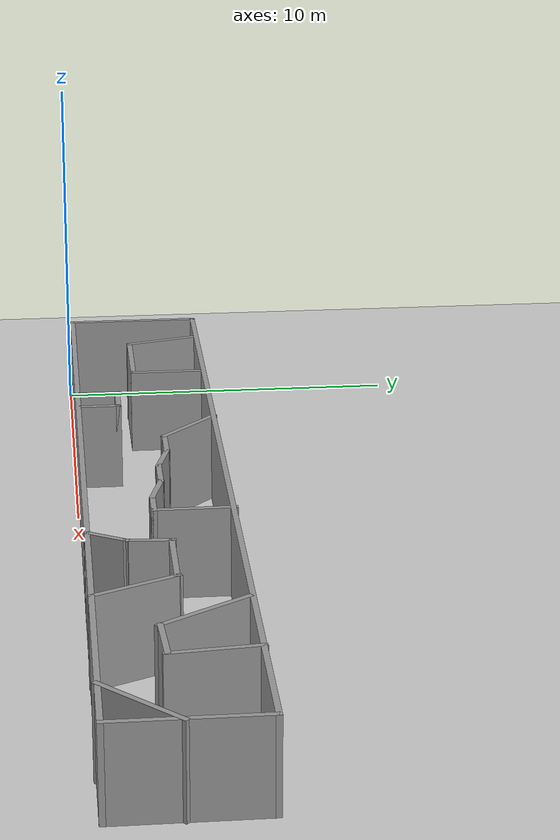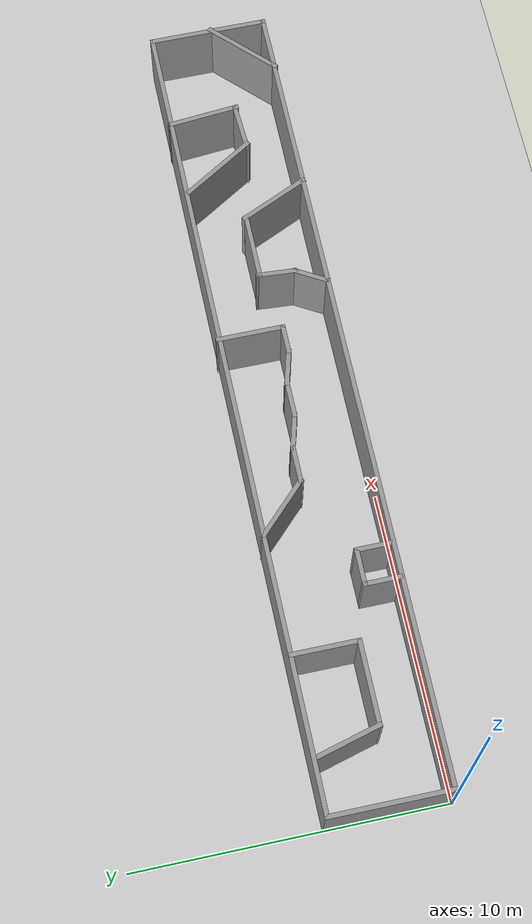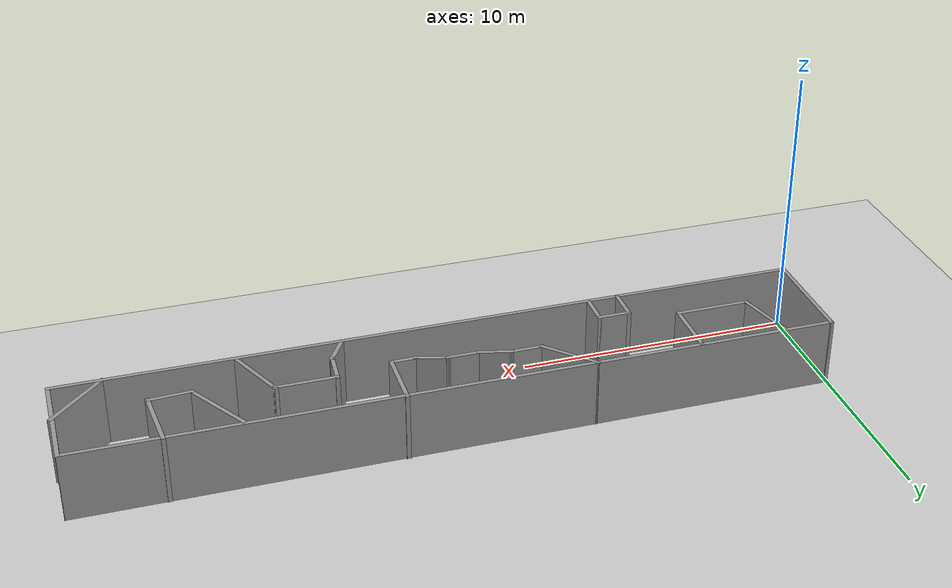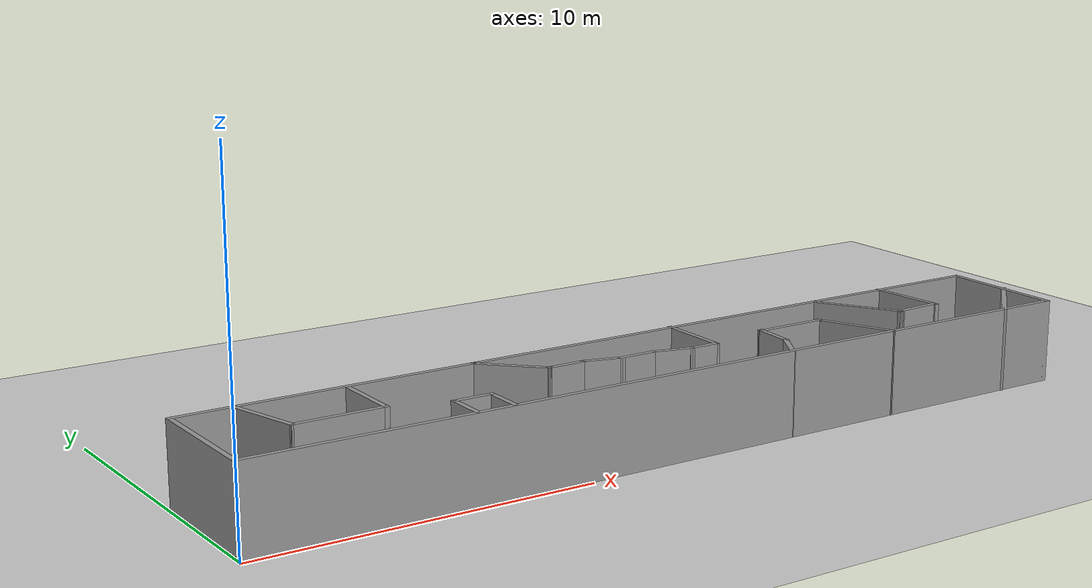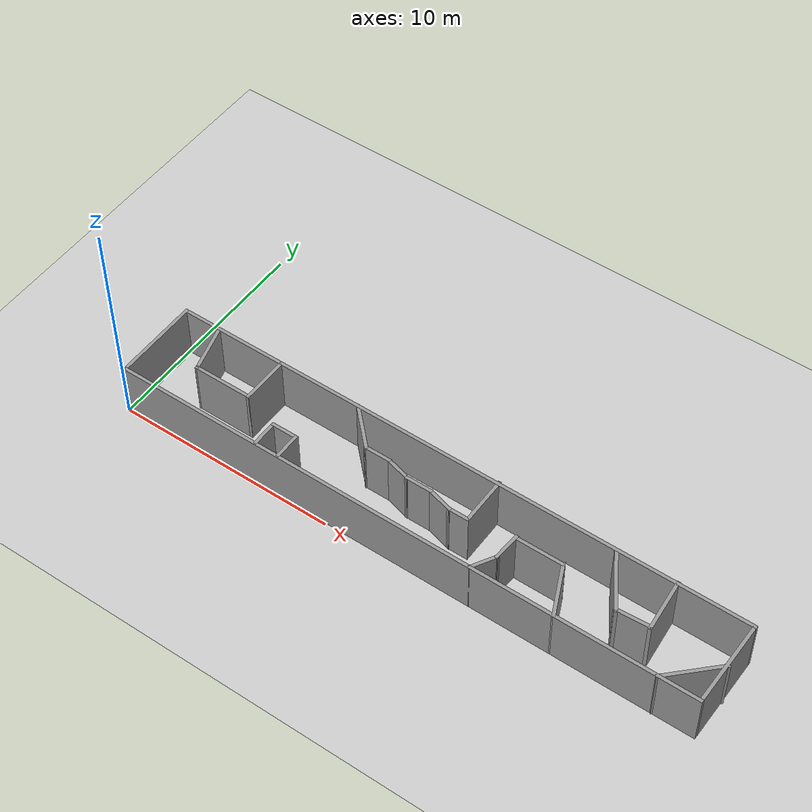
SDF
<sdf version="1.6">
 <world name="default">
  <light name="sun" type="directional">
   <pose>0 0 10 0 -0 0</pose>
   <diffuse>0.8 0.8 0.8 1</diffuse>
   <specular>0.2 0.2 0.2 1</specular>
   <attenuation>
    <range>1000</range>
    <constant>0.9</constant>
    <linear>0.01</linear>
    <quadratic>0.001</quadratic>
   </attenuation>
   <direction>-0.5 0.1 -0.9</direction>
  </light>
  <model name="ground_plane">
   <static>1</static>
   <link name="link">
    <collision name="collision">
     <geometry><plane><normal>0 0 1</normal><size>100 100</size></plane></geometry>
     <surface>
      <contact><collide_bitmask>65535</collide_bitmask></contact>
      <friction><ode><mu>100</mu><mu2>50</mu2></ode></friction>
     </surface>
    </collision>
    <visual name="visual">
     <cast_shadows>0</cast_shadows>
     <geometry><plane><normal>0 0 1</normal><size>100 100</size></plane></geometry>
     <material>
      <script><uri>file://media/materials/scripts/gazebo.material</uri><name>Gazebo/Grey</name></script>
     </material>
    </visual>
   </link>
  </model>
  <gravity>0 0 -9.8</gravity>
  <magnetic_field>6e-06 2.3e-05 -4.2e-05</magnetic_field>
  <atmosphere type="adiabatic"/>
  <physics name="default_physics" default="0" type="ode">
   <max_step_size>0.001</max_step_size>
   <real_time_factor>1</real_time_factor>
   <real_time_update_rate>1000</real_time_update_rate>
  </physics>
  <scene><ambient>0.4 0.4 0.4 1</ambient><background>0.7 0.7 0.7 1</background><shadows>1</shadows></scene>
  <spherical_coordinates>
   <surface_model>EARTH_WGS84</surface_model>
   <latitude_deg>0</latitude_deg>
   <longitude_deg>0</longitude_deg>
   <elevation>0</elevation>
   <heading_deg>0</heading_deg>
  </spherical_coordinates>
  <model name="Test2">
   <pose>13.3782 2.03003 0 0 -0 0</pose>
   <link name="Wall_0">
    <collision name="Wall_0_Collision">
     <geometry><box><size>26.75 0.15 2.5</size></box></geometry>
     <pose>0 0 1.25 0 -0 0</pose>
    </collision>
    <visual name="Wall_0_Visual">
     <pose>0 0 1.25 0 -0 0</pose>
     <geometry><box><size>26.75 0.15 2.5</size></box></geometry>
     <material>
      <script><uri>file://media/materials/scripts/gazebo.material</uri><name>Gazebo/Grey</name></script>
      <ambient>1 1 1 1</ambient>
     </material>
     <meta><layer>0</layer></meta>
    </visual>
    <pose>-0.037871 -1.90532 0 0 -0 0</pose>
   </link>
   <link name="Wall_10">
    <collision name="Wall_10_Collision">
     <geometry><box><size>2.25 0.15 2.5</size></box></geometry>
     <pose>0 0 1.25 0 -0 0</pose>
    </collision>
    <visual name="Wall_10_Visual">
     <pose>0 0 1.25 0 -0 0</pose>
     <geometry><box><size>2.25 0.15 2.5</size></box></geometry>
     <material>
      <script><uri>file://media/materials/scripts/gazebo.material</uri><name>Gazebo/Grey</name></script>
      <ambient>1 1 1 1</ambient>
     </material>
     <meta><layer>0</layer></meta>
    </visual>
    <pose>-8.44766 0.854981 0 0 -0 1.5708</pose>
   </link>
   <link name="Wall_12">
    <collision name="Wall_12_Collision">
     <geometry><box><size>1.25 0.15 2.5</size></box></geometry>
     <pose>0 0 1.25 0 -0 0</pose>
    </collision>
    <visual name="Wall_12_Visual">
     <pose>0 0 1.25 0 -0 0</pose>
     <geometry><box><size>1.25 0.15 2.5</size></box></geometry>
     <material>
      <script><uri>file://media/materials/scripts/gazebo.material</uri><name>Gazebo/Grey</name></script>
      <ambient>1 1 1 1</ambient>
     </material>
     <meta><layer>0</layer></meta>
    </visual>
    <pose>-6.77697 -1.29803 0 0 -0 1.5708</pose>
   </link>
   <link name="Wall_13">
    <collision name="Wall_13_Collision">
     <geometry><box><size>1.25 0.15 2.5</size></box></geometry>
     <pose>0 0 1.25 0 -0 0</pose>
    </collision>
    <visual name="Wall_13_Visual">
     <pose>0 0 1.25 0 -0 0</pose>
     <geometry><box><size>1.25 0.15 2.5</size></box></geometry>
     <material>
      <script><uri>file://media/materials/scripts/gazebo.material</uri><name>Gazebo/Grey</name></script>
      <ambient>1 1 1 1</ambient>
     </material>
     <meta><layer>0</layer></meta>
    </visual>
    <pose>-6.22697 -0.748033 0 0 -0 0</pose>
   </link>
   <link name="Wall_14">
    <collision name="Wall_14_Collision">
     <geometry><box><size>1.25 0.15 2.5</size></box></geometry>
     <pose>0 0 1.25 0 -0 0</pose>
    </collision>
    <visual name="Wall_14_Visual">
     <pose>0 0 1.25 0 -0 0</pose>
     <geometry><box><size>1.25 0.15 2.5</size></box></geometry>
     <material>
      <script><uri>file://media/materials/scripts/gazebo.material</uri><name>Gazebo/Grey</name></script>
      <ambient>1 1 1 1</ambient>
     </material>
     <meta><layer>0</layer></meta>
    </visual>
    <pose>-5.67697 -1.29803 0 0 -0 -1.5708</pose>
   </link>
   <link name="Wall_16">
    <collision name="Wall_16_Collision">
     <geometry><box><size>2.25 0.15 2.5</size></box></geometry>
     <pose>0 0 1.25 0 -0 0</pose>
    </collision>
    <visual name="Wall_16_Visual">
     <pose>0 0 1.25 0 -0 0</pose>
     <geometry><box><size>2.25 0.15 2.5</size></box></geometry>
     <material>
      <script><uri>file://media/materials/scripts/gazebo.material</uri><name>Gazebo/Grey</name></script>
      <ambient>1 1 1 1</ambient>
     </material>
     <meta><layer>0</layer></meta>
    </visual>
    <pose>-3.89036 1.17187 0 0 -0 -0.785398</pose>
   </link>
   <link name="Wall_17">
    <collision name="Wall_17_Collision">
     <geometry><box><size>1.25 0.15 2.5</size></box></geometry>
     <pose>0 0 1.25 0 -0 0</pose>
    </collision>
    <visual name="Wall_17_Visual">
     <pose>0 0 1.25 0 -0 0</pose>
     <geometry><box><size>1.25 0.15 2.5</size></box></geometry>
     <material>
      <script><uri>file://media/materials/scripts/gazebo.material</uri><name>Gazebo/Grey</name></script>
      <ambient>1 1 1 1</ambient>
     </material>
     <meta><layer>0</layer></meta>
    </visual>
    <pose>-2.5979 0.429412 0 0 -0 0</pose>
   </link>
   <link name="Wall_18">
    <collision name="Wall_18_Collision">
     <geometry><box><size>1.25 0.15 2.5</size></box></geometry>
     <pose>0 0 1.25 0 -0 0</pose>
    </collision>
    <visual name="Wall_18_Visual">
     <pose>0 0 1.25 0 -0 0</pose>
     <geometry><box><size>1.25 0.15 2.5</size></box></geometry>
     <material>
      <script><uri>file://media/materials/scripts/gazebo.material</uri><name>Gazebo/Grey</name></script>
      <ambient>1 1 1 1</ambient>
     </material>
     <meta><layer>0</layer></meta>
    </visual>
    <pose>-1.51664 0.287061 0 0 -0 -0.261799</pose>
   </link>
   <link name="Wall_19">
    <collision name="Wall_19_Collision">
     <geometry><box><size>1.25 0.15 2.5</size></box></geometry>
     <pose>0 0 1.25 0 -0 0</pose>
    </collision>
    <visual name="Wall_19_Visual">
     <pose>0 0 1.25 0 -0 0</pose>
     <geometry><box><size>1.25 0.15 2.5</size></box></geometry>
     <material>
      <script><uri>file://media/materials/scripts/gazebo.material</uri><name>Gazebo/Grey</name></script>
      <ambient>1 1 1 1</ambient>
     </material>
     <meta><layer>0</layer></meta>
    </visual>
    <pose>-0.435379 0.144711 0 0 -0 0</pose>
   </link>
   <link name="Wall_2">
    <collision name="Wall_2_Collision">
     <geometry><box><size>26.75 0.15 2.5</size></box></geometry>
     <pose>0 0 1.25 0 -0 0</pose>
    </collision>
    <visual name="Wall_2_Visual">
     <pose>0 0 1.25 0 -0 0</pose>
     <geometry><box><size>26.75 0.15 2.5</size></box></geometry>
     <material>
      <script><uri>file://media/materials/scripts/gazebo.material</uri><name>Gazebo/Grey</name></script>
      <ambient>1 1 1 1</ambient>
     </material>
     <meta><layer>0</layer></meta>
    </visual>
    <pose>-0.038038 1.91434 0 0 -0 0</pose>
   </link>
   <link name="Wall_20">
    <collision name="Wall_20_Collision">
     <geometry><box><size>1.25 0.15 2.5</size></box></geometry>
     <pose>0 0 1.25 0 -0 0</pose>
    </collision>
    <visual name="Wall_20_Visual">
     <pose>0 0 1.25 0 -0 0</pose>
     <geometry><box><size>1.25 0.15 2.5</size></box></geometry>
     <material>
      <script><uri>file://media/materials/scripts/gazebo.material</uri><name>Gazebo/Grey</name></script>
      <ambient>1 1 1 1</ambient>
     </material>
     <meta><layer>0</layer></meta>
    </visual>
    <pose>0.64588 0.00236 0 0 -0 -0.261799</pose>
   </link>
   <link name="Wall_21">
    <collision name="Wall_21_Collision">
     <geometry><box><size>1 0.15 2.5</size></box></geometry>
     <pose>0 0 1.25 0 -0 0</pose>
    </collision>
    <visual name="Wall_21_Visual">
     <pose>0 0 1.25 0 -0 0</pose>
     <geometry><box><size>1 0.15 2.5</size></box></geometry>
     <material>
      <script><uri>file://media/materials/scripts/gazebo.material</uri><name>Gazebo/Grey</name></script>
      <ambient>1 1 1 1</ambient>
     </material>
     <meta><layer>0</layer></meta>
    </visual>
    <pose>1.60214 -0.13999 0 0 -0 0</pose>
   </link>
   <link name="Wall_22">
    <collision name="Wall_22_Collision">
     <geometry><box><size>2.25 0.15 2.5</size></box></geometry>
     <pose>0 0 1.25 0 -0 0</pose>
    </collision>
    <visual name="Wall_22_Visual">
     <pose>0 0 1.25 0 -0 0</pose>
     <geometry><box><size>2.25 0.15 2.5</size></box></geometry>
     <material>
      <script><uri>file://media/materials/scripts/gazebo.material</uri><name>Gazebo/Grey</name></script>
      <ambient>1 1 1 1</ambient>
     </material>
     <meta><layer>0</layer></meta>
    </visual>
    <pose>2.02714 0.91001 0 0 -0 1.5708</pose>
   </link>
   <link name="Wall_24">
    <collision name="Wall_24_Collision">
     <geometry><box><size>1.25 0.15 2.5</size></box></geometry>
     <pose>0 0 1.25 0 -0 0</pose>
    </collision>
    <visual name="Wall_24_Visual">
     <pose>0 0 1.25 0 -0 0</pose>
     <geometry><box><size>1.25 0.15 2.5</size></box></geometry>
     <material>
      <script><uri>file://media/materials/scripts/gazebo.material</uri><name>Gazebo/Grey</name></script>
      <ambient>1 1 1 1</ambient>
     </material>
     <meta><layer>0</layer></meta>
    </visual>
    <pose>3.61193 -1.41217 0 0 -0 1.0472</pose>
   </link>
   <link name="Wall_25">
    <collision name="Wall_25_Collision">
     <geometry><box><size>1.32643 0.15 2.5</size></box></geometry>
     <pose>0 0 1.25 0 -0 0</pose>
    </collision>
    <visual name="Wall_25_Visual">
     <pose>0 0 1.25 0 -0 0</pose>
     <geometry><box><size>1.32643 0.15 2.5</size></box></geometry>
     <material>
      <script><uri>file://media/materials/scripts/gazebo.material</uri><name>Gazebo/Grey</name></script>
      <ambient>1 1 1 1</ambient>
     </material>
     <meta><layer>0</layer></meta>
    </visual>
    <pose>3.92738 -0.349038 0 0 -0 1.50196</pose>
   </link>
   <link name="Wall_26">
    <collision name="Wall_26_Collision">
     <geometry><box><size>2.25 0.15 2.5</size></box></geometry>
     <pose>0 0 1.25 0 -0 0</pose>
    </collision>
    <visual name="Wall_26_Visual">
     <pose>0 0 1.25 0 -0 0</pose>
     <geometry><box><size>2.25 0.15 2.5</size></box></geometry>
     <material>
      <script><uri>file://media/materials/scripts/gazebo.material</uri><name>Gazebo/Grey</name></script>
      <ambient>1 1 1 1</ambient>
     </material>
     <meta><layer>0</layer></meta>
    </visual>
    <pose>5.01784 0.197329 0 0 -0 0</pose>
   </link>
   <link name="Wall_27">
    <collision name="Wall_27_Collision">
     <geometry><box><size>2.50129 0.15 2.5</size></box></geometry>
     <pose>0 0 1.25 0 -0 0</pose>
    </collision>
    <visual name="Wall_27_Visual">
     <pose>0 0 1.25 0 -0 0</pose>
     <geometry><box><size>2.50129 0.15 2.5</size></box></geometry>
     <material>
      <script><uri>file://media/materials/scripts/gazebo.material</uri><name>Gazebo/Grey</name></script>
      <ambient>1 1 1 1</ambient>
     </material>
     <meta><layer>0</layer></meta>
    </visual>
    <pose>6.55238 -0.833365 0 0 -0 -1.14598</pose>
   </link>
   <link name="Wall_29">
    <collision name="Wall_29_Collision">
     <geometry><box><size>2.77736 0.15 2.5</size></box></geometry>
     <pose>0 0 1.25 0 -0 0</pose>
    </collision>
    <visual name="Wall_29_Visual">
     <pose>0 0 1.25 0 -0 0</pose>
     <geometry><box><size>2.77736 0.15 2.5</size></box></geometry>
     <material>
      <script><uri>file://media/materials/scripts/gazebo.material</uri><name>Gazebo/Grey</name></script>
      <ambient>1 1 1 1</ambient>
     </material>
     <meta><layer>0</layer></meta>
    </visual>
    <pose>8.07112 0.714706 0 0 -0 -1.01901</pose>
   </link>
   <link name="Wall_30">
    <collision name="Wall_30_Collision">
     <geometry><box><size>1.5832 0.15 2.5</size></box></geometry>
     <pose>0 0 1.25 0 -0 0</pose>
    </collision>
    <visual name="Wall_30_Visual">
     <pose>0 0 1.25 0 -0 0</pose>
     <geometry><box><size>1.5832 0.15 2.5</size></box></geometry>
     <material>
      <script><uri>file://media/materials/scripts/gazebo.material</uri><name>Gazebo/Grey</name></script>
      <ambient>1 1 1 1</ambient>
     </material>
     <meta><layer>0</layer></meta>
    </visual>
    <pose>9.43476 -0.323102 0 0 -0 0.056485</pose>
   </link>
   <link name="Wall_31">
    <collision name="Wall_31_Collision">
     <geometry><box><size>2.42085 0.15 2.5</size></box></geometry>
     <pose>0 0 1.25 0 -0 0</pose>
    </collision>
    <visual name="Wall_31_Visual">
     <pose>0 0 1.25 0 -0 0</pose>
     <geometry><box><size>2.42085 0.15 2.5</size></box></geometry>
     <material>
      <script><uri>file://media/materials/scripts/gazebo.material</uri><name>Gazebo/Grey</name></script>
      <ambient>1 1 1 1</ambient>
     </material>
     <meta><layer>0</layer></meta>
    </visual>
    <pose>10.0895 0.80781 0 0 -0 1.65999</pose>
   </link>
   <link name="Wall_33">
    <collision name="Wall_33_Collision">
     <geometry><box><size>2.75 0.15 2.5</size></box></geometry>
     <pose>0 0 1.25 0 -0 0</pose>
    </collision>
    <visual name="Wall_33_Visual">
     <pose>0 0 1.25 0 -0 0</pose>
     <geometry><box><size>2.75 0.15 2.5</size></box></geometry>
     <material>
      <script><uri>file://media/materials/scripts/gazebo.material</uri><name>Gazebo/Grey</name></script>
      <ambient>1 1 1 1</ambient>
     </material>
     <meta><layer>0</layer></meta>
    </visual>
    <pose>12.3877 -1.00971 0 0 -0 0.785398</pose>
   </link>
   <link name="Wall_4">
    <collision name="Wall_4_Collision">
     <geometry><box><size>3.96965 0.15 2.5</size></box></geometry>
     <pose>0 0 1.25 0 -0 0</pose>
    </collision>
    <visual name="Wall_4_Visual">
     <pose>0 0 1.25 0 -0 0</pose>
     <geometry><box><size>3.96965 0.15 2.5</size></box></geometry>
     <material>
      <script><uri>file://media/materials/scripts/gazebo.material</uri><name>Gazebo/Grey</name></script>
      <ambient>1 1 1 1</ambient>
     </material>
     <meta><layer>0</layer></meta>
    </visual>
    <pose>-13.338 0.00451 0 0 -0 1.57084</pose>
   </link>
   <link name="Wall_6">
    <collision name="Wall_6_Collision">
     <geometry><box><size>3.96965 0.15 2.5</size></box></geometry>
     <pose>0 0 1.25 0 -0 0</pose>
    </collision>
    <visual name="Wall_6_Visual">
     <pose>0 0 1.25 0 -0 0</pose>
     <geometry><box><size>3.96965 0.15 2.5</size></box></geometry>
     <material>
      <script><uri>file://media/materials/scripts/gazebo.material</uri><name>Gazebo/Grey</name></script>
      <ambient>1 1 1 1</ambient>
     </material>
     <meta><layer>0</layer></meta>
    </visual>
    <pose>13.262 0.00451 0 0 -0 -1.57075</pose>
   </link>
   <link name="Wall_8">
    <collision name="Wall_8_Collision">
     <geometry><box><size>2.25 0.15 2.5</size></box></geometry>
     <pose>0 0 1.25 0 -0 0</pose>
    </collision>
    <visual name="Wall_8_Visual">
     <pose>0 0 1.25 0 -0 0</pose>
     <geometry><box><size>2.25 0.15 2.5</size></box></geometry>
     <material>
      <script><uri>file://media/materials/scripts/gazebo.material</uri><name>Gazebo/Grey</name></script>
      <ambient>1 1 1 1</ambient>
     </material>
     <meta><layer>0</layer></meta>
    </visual>
    <pose>-11.3194 0.819203 0 0 -0 -1.309</pose>
   </link>
   <link name="Wall_9">
    <collision name="Wall_9_Collision">
     <geometry><box><size>2.75 0.15 2.5</size></box></geometry>
     <pose>0 0 1.25 0 -0 0</pose>
    </collision>
    <visual name="Wall_9_Visual">
     <pose>0 0 1.25 0 -0 0</pose>
     <geometry><box><size>2.75 0.15 2.5</size></box></geometry>
     <material>
      <script><uri>file://media/materials/scripts/gazebo.material</uri><name>Gazebo/Grey</name></script>
      <ambient>1 1 1 1</ambient>
     </material>
     <meta><layer>0</layer></meta>
    </visual>
    <pose>-9.74766 -0.195019 0 0 -0 0</pose>
   </link>
   <static>1</static>
  </model>
 </world>
</sdf>
